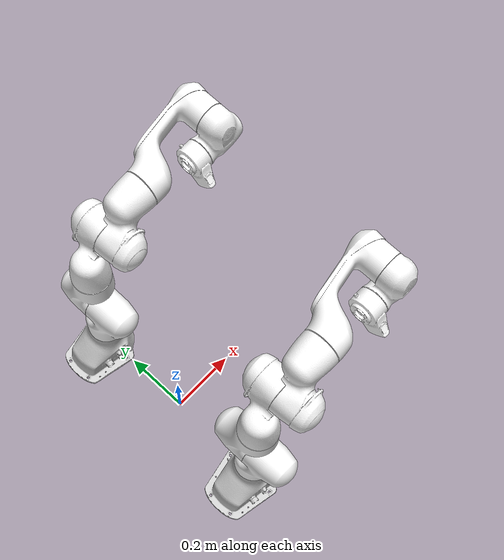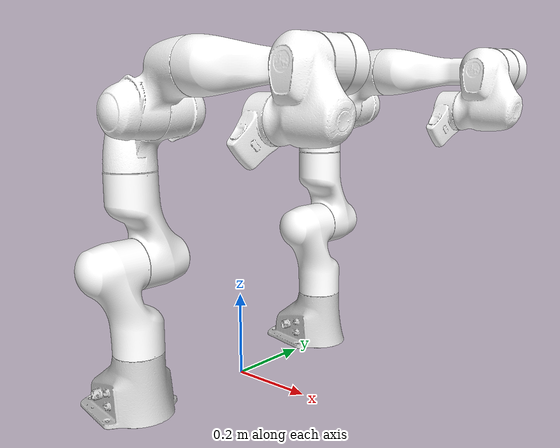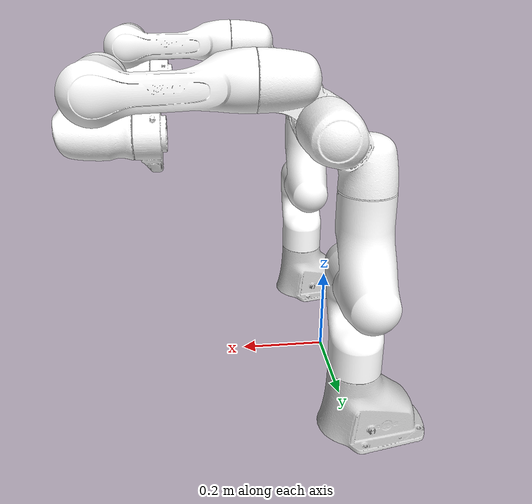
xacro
<?xml version="1.0"?>
<robot name="panda_dual_arms" xmlns:xacro="http://www.ros.org/wiki/xacro">

  <xacro:arg name="arm_id_1" default="panda_left"/>
  <xacro:arg name="arm_id_2" default="panda_right"/>

  <!-- Placement for each arm: xyz and rpy relative to world -->
  <xacro:arg name="arm_1_xyz" default="0 0.3 0"/>
  <xacro:arg name="arm_1_rpy" default="0 0 0"/>
  <xacro:arg name="arm_2_xyz" default="0 -0.3 0"/>
  <xacro:arg name="arm_2_rpy" default="0 0 0"/>

  <material name="panda_white">
    <color rgba="1. 1. 1. 1."/>
  </material>
  <material name="panda_gray">
    <color rgba=".8 .8 .8 1."/>
  </material>

  <!-- ======== Panda arm macro (identical to panda.urdf) ======== -->
  <xacro:macro name="panda_arm" params="prefix connected_to arm_xyz arm_rpy">

    <joint name="${prefix}_base_joint" type="fixed">
      <origin xyz="${arm_xyz}" rpy="${arm_rpy}"/>
      <parent link="${connected_to}"/>
      <child link="${prefix}_link0"/>
    </joint>

    <link name="${prefix}_link0">
      <visual>
        <geometry>
          <mesh filename="package://panda/meshes/visual/link0.stl"/>
        </geometry>
        <material name="panda_gray"/>
      </visual>
      <collision>
        <geometry>
          <mesh filename="package://panda/meshes/collision/link0.stl"/>
        </geometry>
        <material name="panda_gray"/>
      </collision>
      <inertial>
        <origin rpy="0 0 0" xyz="0 0 0"/>
        <mass value="2.8142028896"/>
        <inertia ixx="0.0129886979" ixy="0.0" ixz="0.0" iyy="0.0165355284" iyz="0" izz="0.0203311636"/>
      </inertial>
    </link>

    <link name="${prefix}_link1">
      <visual>
        <geometry>
          <mesh filename="package://panda/meshes/visual/link1.stl"/>
        </geometry>
        <material name="panda_white"/>
      </visual>
      <collision>
        <geometry>
          <mesh filename="package://panda/meshes/collision/link1.stl"/>
        </geometry>
        <material name="panda_white"/>
      </collision>
      <inertial>
        <origin rpy="0 0 0" xyz="0 0 0"/>
        <mass value="2.3599995791"/>
        <inertia ixx="0.0186863903" ixy="0.0" ixz="0.0" iyy="0.0143789874" iyz="0" izz="0.00906812"/>
      </inertial>
    </link>

    <joint name="${prefix}_joint1" type="revolute">
      <safety_controller k_position="100.0" k_velocity="40.0" soft_lower_limit="-2.8973" soft_upper_limit="2.8973"/>
      <origin rpy="0 0 0" xyz="0 0 0.333"/>
      <parent link="${prefix}_link0"/>
      <child link="${prefix}_link1"/>
      <axis xyz="0 0 1"/>
      <limit effort="87" lower="-2.8973" upper="2.8973" velocity="2.1750"/>
      <dynamics damping="1.0"/>
    </joint>

    <link name="${prefix}_link2">
      <visual>
        <geometry>
          <mesh filename="package://panda/meshes/visual/link2.stl"/>
        </geometry>
        <material name="panda_white"/>
      </visual>
      <collision>
        <geometry>
          <mesh filename="package://panda/meshes/collision/link2.stl"/>
        </geometry>
        <material name="panda_white"/>
      </collision>
      <inertial>
        <origin rpy="0 0 0" xyz="0 0 0"/>
        <mass value="2.379518833"/>
        <inertia ixx="0.0190388734" ixy="0.0" ixz="0.0" iyy="0.0091429124" iyz="0" izz="0.014697537"/>
      </inertial>
    </link>

    <joint name="${prefix}_joint2" type="revolute">
      <safety_controller k_position="100.0" k_velocity="40.0" soft_lower_limit="-1.7628" soft_upper_limit="1.7628"/>
      <origin rpy="-1.57079632679 0 0" xyz="0 0 0"/>
      <parent link="${prefix}_link1"/>
      <child link="${prefix}_link2"/>
      <axis xyz="0 0 1"/>
      <limit effort="87" lower="-1.7628" upper="1.7628" velocity="2.1750"/>
      <dynamics damping="1.0"/>
    </joint>

    <link name="${prefix}_link3">
      <visual>
        <geometry>
          <mesh filename="package://panda/meshes/visual/link3.stl"/>
        </geometry>
        <material name="panda_white"/>
      </visual>
      <collision>
        <geometry>
          <mesh filename="package://panda/meshes/collision/link3.stl"/>
        </geometry>
        <material name="panda_white"/>
      </collision>
      <inertial>
        <origin rpy="0 0 0" xyz="0 0 0"/>
        <mass value="2.6498823337"/>
        <inertia ixx="0.0129300178" ixy="0.0" ixz="0.0" iyy="0.0150242121" iyz="0" izz="0.0142734598"/>
      </inertial>
    </link>

    <joint name="${prefix}_joint3" type="revolute">
      <safety_controller k_position="100.0" k_velocity="40.0" soft_lower_limit="-2.8973" soft_upper_limit="2.8973"/>
      <origin rpy="1.57079632679 0 0" xyz="0 -0.316 0"/>
      <parent link="${prefix}_link2"/>
      <child link="${prefix}_link3"/>
      <axis xyz="0 0 1"/>
      <limit effort="87" lower="-2.8973" upper="2.8973" velocity="2.1750"/>
      <dynamics damping="1.0"/>
    </joint>

    <link name="${prefix}_link4">
      <visual>
        <geometry>
          <mesh filename="package://panda/meshes/visual/link4.stl"/>
        </geometry>
        <material name="panda_white"/>
      </visual>
      <collision>
        <geometry>
          <mesh filename="package://panda/meshes/collision/link4.stl"/>
        </geometry>
        <material name="panda_white"/>
      </collision>
      <inertial>
        <origin rpy="0 0 0" xyz="0 0 0"/>
        <mass value="2.6948018744"/>
        <inertia ixx="0.0133874611" ixy="0.0" ixz="0.0" iyy="0.014514325" iyz="0" izz="0.0155175551"/>
      </inertial>
    </link>

    <joint name="${prefix}_joint4" type="revolute">
      <safety_controller k_position="100.0" k_velocity="40.0" soft_lower_limit="-3.0718" soft_upper_limit="-0.0698"/>
      <origin rpy="1.57079632679 0 0" xyz="0.0825 0 0"/>
      <parent link="${prefix}_link3"/>
      <child link="${prefix}_link4"/>
      <axis xyz="0 0 1"/>
      <limit effort="87" lower="-3.0718" upper="-0.0698" velocity="2.1750"/>
      <dynamics damping="1.0"/>
    </joint>

    <link name="${prefix}_link5">
      <visual>
        <geometry>
          <mesh filename="package://panda/meshes/visual/link5.stl"/>
        </geometry>
        <material name="panda_white"/>
      </visual>
      <collision>
        <geometry>
          <mesh filename="package://panda/meshes/collision/link5.stl"/>
        </geometry>
        <material name="panda_white"/>
      </collision>
      <inertial>
        <origin rpy="0 0 0" xyz="0 0 0"/>
        <mass value="2.9812816864"/>
        <inertia ixx="0.0325565705" ixy="0.0" ixz="0.0" iyy="0.0270660472" iyz="0" izz="0.0115023375"/>
      </inertial>
    </link>

    <joint name="${prefix}_joint5" type="revolute">
      <safety_controller k_position="100.0" k_velocity="40.0" soft_lower_limit="-2.8973" soft_upper_limit="2.8973"/>
      <origin rpy="-1.57079632679 0 0" xyz="-0.0825 0.384 0"/>
      <parent link="${prefix}_link4"/>
      <child link="${prefix}_link5"/>
      <axis xyz="0 0 1"/>
      <limit effort="12" lower="-2.8973" upper="2.8973" velocity="2.6100"/>
      <dynamics damping="1.0"/>
    </joint>

    <link name="${prefix}_link6">
      <visual>
        <geometry>
          <mesh filename="package://panda/meshes/visual/link6.stl"/>
        </geometry>
        <material name="panda_white"/>
      </visual>
      <collision>
        <geometry>
          <mesh filename="package://panda/meshes/collision/link6.stl"/>
        </geometry>
        <material name="panda_white"/>
      </collision>
      <inertial>
        <origin rpy="0 0 0" xyz="0 0 0"/>
        <mass value="1.1285806309"/>
        <inertia ixx="0.0026052565" ixy="0.0" ixz="0.0" iyy="0.0039897229" iyz="0" izz="0.0047048591"/>
      </inertial>
    </link>

    <joint name="${prefix}_joint6" type="revolute">
      <safety_controller k_position="100.0" k_velocity="40.0" soft_lower_limit="-0.0175" soft_upper_limit="3.7525"/>
      <origin rpy="1.57079632679 0 0" xyz="0 0 0"/>
      <parent link="${prefix}_link5"/>
      <child link="${prefix}_link6"/>
      <axis xyz="0 0 1"/>
      <limit effort="12" lower="-0.0175" upper="3.752" velocity="2.6100"/>
      <dynamics damping="1.0"/>
    </joint>

    <link name="${prefix}_link7">
      <visual>
        <geometry>
          <mesh filename="package://panda/meshes/visual/link7.stl"/>
        </geometry>
        <material name="panda_white"/>
      </visual>
      <collision>
        <geometry>
          <mesh filename="package://panda/meshes/collision/link7.stl"/>
        </geometry>
        <material name="panda_white"/>
      </collision>
      <inertial>
        <origin rpy="0 0 0" xyz="0 0 0"/>
        <mass value="0.4052912465"/>
        <inertia ixx="0.0006316592" ixy="0.0" ixz="0.0" iyy="0.0006319639" iyz="0" izz="0.0010607721"/>
      </inertial>
    </link>

    <joint name="${prefix}_joint7" type="revolute">
      <safety_controller k_position="100.0" k_velocity="40.0" soft_lower_limit="-2.8973" soft_upper_limit="2.8973"/>
      <origin rpy="1.57079632679 0 0" xyz="0.088 0 0"/>
      <parent link="${prefix}_link6"/>
      <child link="${prefix}_link7"/>
      <axis xyz="0 0 1"/>
      <limit effort="12" lower="-2.8973" upper="2.8973" velocity="2.6100"/>
      <dynamics damping="1.0"/>
    </joint>

    <!-- FLANGE -->
    <link name="${prefix}_EndEffector"/>

    <joint name="${prefix}_joint8" type="fixed">
      <origin rpy="0 0 0" xyz="0 0 0.107"/>
      <parent link="${prefix}_link7"/>
      <child link="${prefix}_EndEffector"/>
      <axis xyz="0 0 0"/>
    </joint>

  </xacro:macro>

  <!-- ======== World ======== -->
  <link name="world"/>

  <!-- ======== Instantiate two arms ======== -->
  <xacro:panda_arm prefix="$(arg arm_id_1)" connected_to="world"
                    arm_xyz="$(arg arm_1_xyz)" arm_rpy="$(arg arm_1_rpy)"/>

  <xacro:panda_arm prefix="$(arg arm_id_2)" connected_to="world"
                    arm_xyz="$(arg arm_2_xyz)" arm_rpy="$(arg arm_2_rpy)"/>

</robot>
